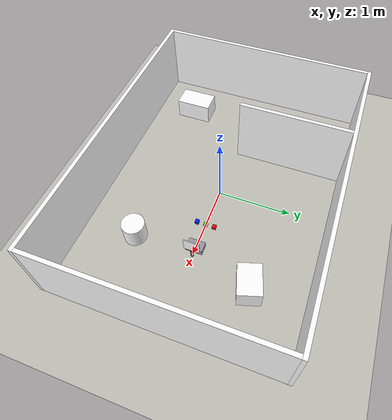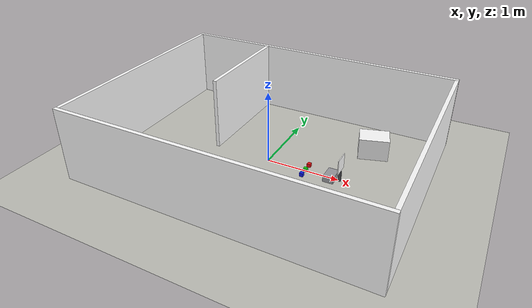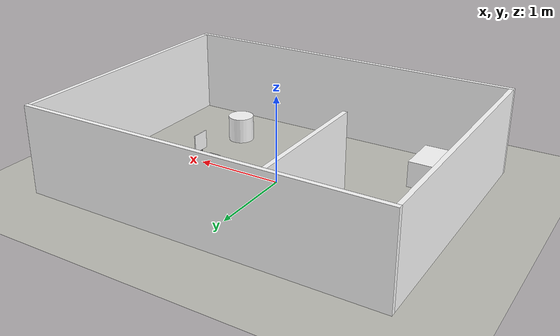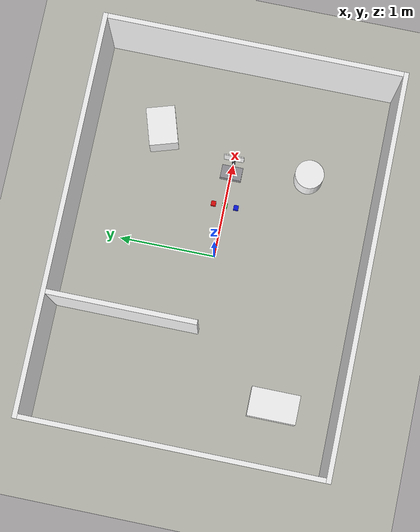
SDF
<?xml version="1.0"?>
<sdf version="1.9">
  <world name="rospider_room">
    <physics name="1ms" type="ignored">
      <max_step_size>0.001</max_step_size>
      <real_time_factor>1.0</real_time_factor>
    </physics>
    <plugin filename="gz-sim-physics-system" name="gz::sim::systems::Physics"/>
    <plugin filename="gz-sim-user-commands-system" name="gz::sim::systems::UserCommands"/>
    <plugin filename="gz-sim-scene-broadcaster-system" name="gz::sim::systems::SceneBroadcaster"/>
    <plugin filename="gz-sim-sensors-system" name="gz::sim::systems::Sensors">
      <render_engine>ogre2</render_engine>
    </plugin>
    <plugin filename="gz-sim-imu-system" name="gz::sim::systems::Imu"/>

    <scene>
      <ambient>0.6 0.6 0.6 1</ambient>
      <background>0.8 0.8 0.8 1</background>
      <grid>false</grid>
    </scene>

    <light type="directional" name="sun">
      <cast_shadows>true</cast_shadows>
      <pose>0 0 10 0 0 0</pose>
      <diffuse>0.9 0.9 0.9 1</diffuse>
      <specular>0.2 0.2 0.2 1</specular>
      <direction>-0.5 0.1 -0.9</direction>
    </light>

    <model name="ground_plane">
      <static>true</static>
      <link name="link">
        <collision name="collision">
          <geometry><plane><normal>0 0 1</normal><size>20 20</size></plane></geometry>
        </collision>
        <visual name="visual">
          <geometry><plane><normal>0 0 1</normal><size>20 20</size></plane></geometry>
          <material><ambient>0.75 0.75 0.72 1</ambient><diffuse>0.75 0.75 0.72 1</diffuse></material>
        </visual>
      </link>
    </model>

    <model name="walls">
      <static>true</static>
      <link name="link">
        <collision name="north_c"><pose>0 1.525 0.5 0 0 0</pose><geometry><box><size>4.1 0.05 1.0</size></box></geometry></collision>
        <visual name="north_v"><pose>0 1.525 0.5 0 0 0</pose><geometry><box><size>4.1 0.05 1.0</size></box></geometry><material><ambient>1 1 1 1</ambient><diffuse>1 1 1 1</diffuse><pbr><metal><albedo_map>textures/wall_north.png</albedo_map><roughness>0.9</roughness><metalness>0</metalness></metal></pbr></material></visual>
        <collision name="south_c"><pose>0 -1.525 0.5 0 0 0</pose><geometry><box><size>4.1 0.05 1.0</size></box></geometry></collision>
        <visual name="south_v"><pose>0 -1.525 0.5 0 0 0</pose><geometry><box><size>4.1 0.05 1.0</size></box></geometry><material><ambient>1 1 1 1</ambient><diffuse>1 1 1 1</diffuse><pbr><metal><albedo_map>textures/wall_south.png</albedo_map><roughness>0.9</roughness><metalness>0</metalness></metal></pbr></material></visual>
        <collision name="east_c"><pose>2.025 0 0.5 0 0 0</pose><geometry><box><size>0.05 3.0 1.0</size></box></geometry></collision>
        <visual name="east_v"><pose>2.025 0 0.5 0 0 0</pose><geometry><box><size>0.05 3.0 1.0</size></box></geometry><material><ambient>1 1 1 1</ambient><diffuse>1 1 1 1</diffuse><pbr><metal><albedo_map>textures/wall_east.png</albedo_map><roughness>0.9</roughness><metalness>0</metalness></metal></pbr></material></visual>
        <collision name="west_c"><pose>-2.025 0 0.5 0 0 0</pose><geometry><box><size>0.05 3.0 1.0</size></box></geometry></collision>
        <visual name="west_v"><pose>-2.025 0 0.5 0 0 0</pose><geometry><box><size>0.05 3.0 1.0</size></box></geometry><material><ambient>1 1 1 1</ambient><diffuse>1 1 1 1</diffuse><pbr><metal><albedo_map>textures/wall_west.png</albedo_map><roughness>0.9</roughness><metalness>0</metalness></metal></pbr></material></visual>
        <collision name="partition_c"><pose>-0.8 0.75 0.5 0 0 0</pose><geometry><box><size>0.05 1.5 1.0</size></box></geometry></collision>
        <visual name="partition_v"><pose>-0.8 0.75 0.5 0 0 0</pose><geometry><box><size>0.05 1.5 1.0</size></box></geometry><material><ambient>1 1 1 1</ambient><diffuse>1 1 1 1</diffuse><pbr><metal><albedo_map>textures/partition.png</albedo_map><roughness>0.9</roughness><metalness>0</metalness></metal></pbr></material></visual>
      </link>
    </model>

    <model name="box_obstacle">
      <static>true</static>
      <pose>1.2 0.8 0.15 0 0 0.3</pose>
      <link name="link">
        <collision name="c"><geometry><box><size>0.4 0.3 0.3</size></box></geometry></collision>
        <visual name="v"><geometry><box><size>0.4 0.3 0.3</size></box></geometry><material><ambient>1 1 1 1</ambient><diffuse>1 1 1 1</diffuse><pbr><metal><albedo_map>textures/box.png</albedo_map><roughness>0.9</roughness><metalness>0</metalness></metal></pbr></material></visual>
      </link>
    </model>

    <model name="cylinder_obstacle">
      <static>true</static>
      <pose>1.0 -0.8 0.15 0 0 0</pose>
      <link name="link">
        <collision name="c"><geometry><cylinder><radius>0.15</radius><length>0.3</length></cylinder></geometry></collision>
        <visual name="v"><geometry><cylinder><radius>0.15</radius><length>0.3</length></cylinder></geometry><material><ambient>1 1 1 1</ambient><diffuse>1 1 1 1</diffuse><pbr><metal><albedo_map>textures/cylinder.png</albedo_map><roughness>0.9</roughness><metalness>0</metalness></metal></pbr></material></visual>
      </link>
    </model>

    <model name="crate_obstacle">
      <static>true</static>
      <pose>-1.4 -0.9 0.15 0 0 0</pose>
      <link name="link">
        <collision name="c"><geometry><box><size>0.3 0.5 0.3</size></box></geometry></collision>
        <visual name="v"><geometry><box><size>0.3 0.5 0.3</size></box></geometry><material><ambient>1 1 1 1</ambient><diffuse>1 1 1 1</diffuse><pbr><metal><albedo_map>textures/crate.png</albedo_map><roughness>0.9</roughness><metalness>0</metalness></metal></pbr></material></visual>
      </link>
    </model>

    <model name="red_cube">
      <static>true</static>
      <pose>0.55 0.12 0.025 0 0 0</pose>
      <link name="link">
        <visual name="v"><geometry><box><size>0.05 0.05 0.05</size></box></geometry><material><ambient>0.9 0.05 0.05 1</ambient><diffuse>0.9 0.05 0.05 1</diffuse></material></visual>
      </link>
    </model>

    <model name="green_cube">
      <static>true</static>
      <pose>0.55 0 0.025 0 0 0</pose>
      <link name="link">
        <visual name="v"><geometry><box><size>0.05 0.05 0.05</size></box></geometry><material><ambient>0.05 0.8 0.05 1</ambient><diffuse>0.05 0.8 0.05 1</diffuse></material></visual>
      </link>
    </model>

    <model name="blue_cube">
      <static>true</static>
      <pose>0.55 -0.12 0.025 0 0 0</pose>
      <link name="link">
        <visual name="v"><geometry><box><size>0.05 0.05 0.05</size></box></geometry><material><ambient>0.05 0.1 0.9 1</ambient><diffuse>0.05 0.1 0.9 1</diffuse></material></visual>
      </link>
    </model>

    <model name="tag_station_1">
      <pose>0.9 0 0 0 0 3.14159</pose>
      <static>true</static>
      <link name="link">
        <collision name="pedestal_c">
          <pose>0 0 0.040000 0 0 0</pose>
          <geometry><box><size>0.140000 0.220000 0.080000</size></box></geometry>
        </collision>
        <visual name="pedestal_v">
          <pose>0 0 0.040000 0 0 0</pose>
          <geometry><box><size>0.140000 0.220000 0.080000</size></box></geometry>
          <material>
            <ambient>0.6 0.6 0.62 1</ambient>
            <diffuse>0.6 0.6 0.62 1</diffuse>
          </material>
        </visual>
        <collision name="post_c">
          <pose>-0.120000 0 0.072500 0 0 0</pose>
          <geometry><box><size>0.030000 0.030000 0.145000</size></box></geometry>
        </collision>
        <visual name="post_v">
          <pose>-0.120000 0 0.072500 0 0 0</pose>
          <geometry><box><size>0.030000 0.030000 0.145000</size></box></geometry>
          <material>
            <ambient>0.3 0.3 0.32 1</ambient>
            <diffuse>0.3 0.3 0.32 1</diffuse>
          </material>
        </visual>
        <collision name="board_c">
          <pose>-0.120000 0 0.250000 0 0 0</pose>
          <geometry><box><size>0.010000 0.210000 0.210000</size></box></geometry>
        </collision>
        <visual name="board_v">
          <pose>-0.120000 0 0.250000 0 0 0</pose>
          <geometry><box><size>0.010000 0.210000 0.210000</size></box></geometry>
          <material>
            <ambient>1 1 1 1</ambient>
            <diffuse>1 1 1 1</diffuse>
            <pbr><metal>
              <albedo_map>textures/tag_1.png</albedo_map>
              <roughness>0.9</roughness>
              <metalness>0</metalness>
            </metal></pbr>
          </material>
        </visual>
      </link>
    </model>
  </world>
</sdf>
